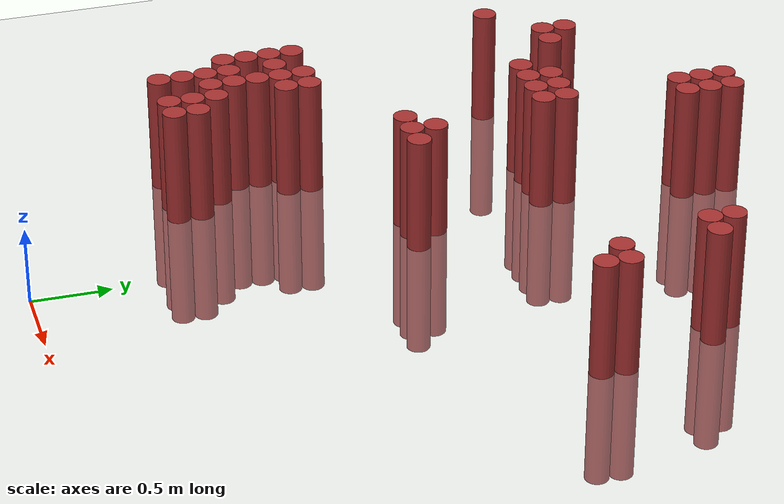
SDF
<sdf version="1.6">
 <world name="default">
  <model name="ground_plane">
   <static>1</static>
   <link name="link">
    <collision name="collision">
     <geometry><plane><normal>0 0 1</normal><size>100 100</size></plane></geometry>
     <surface><friction><ode><mu>100</mu><mu2>50</mu2></ode></friction></surface>
    </collision>
    <visual name="visual">
     <cast_shadows>0</cast_shadows>
     <geometry><plane><normal>0 0 1</normal><size>100 100</size></plane></geometry>
     <material>
      <script><uri>file://media/materials/scripts/gazebo.material</uri><name>Gazebo/Grey</name></script>
     </material>
    </visual>
   </link>
  </model>
  <model name="unit_cylinder_161">
   <static>1</static>
   <pose>-1.475000 3.325000 0.000000 0.000000 0.000000 0.000000</pose>
   <link name="link">
    <inertial>
     <mass>1</mass>
     <inertia><ixx>0.145833</ixx><ixy>0</ixy><ixz>0</ixz><iyy>0.145833</iyy><iyz>0</iyz><izz>0.125</izz></inertia>
    </inertial>
    <collision name="collision">
     <geometry><cylinder><radius>0.075000</radius><length>1.5</length></cylinder></geometry>
    </collision>
    <visual name="visual">
     <geometry><cylinder><radius>0.075000</radius><length>1.5</length></cylinder></geometry>
     <material>
      <ambient>0.648000 0.192000 0.192000 1</ambient>
      <diffuse>0.648000 0.192000 0.192000 1</diffuse>
     </material>
     <material>
      <script><name>Gazebo/Grey</name><uri>file://media/materials/scripts/gazebo.material</uri></script>
     </material>
    </visual>
   </link>
  </model>
  <model name="unit_cylinder_165">
   <static>1</static>
   <pose>-1.325000 1.525000 0.000000 0.000000 0.000000 0.000000</pose>
   <link name="link">
    <inertial>
     <mass>1</mass>
     <inertia><ixx>0.145833</ixx><ixy>0</ixy><ixz>0</ixz><iyy>0.145833</iyy><iyz>0</iyz><izz>0.125</izz></inertia>
    </inertial>
    <collision name="collision">
     <geometry><cylinder><radius>0.075000</radius><length>1.5</length></cylinder></geometry>
    </collision>
    <visual name="visual">
     <geometry><cylinder><radius>0.075000</radius><length>1.5</length></cylinder></geometry>
     <material>
      <ambient>0.648000 0.192000 0.192000 1</ambient>
      <diffuse>0.648000 0.192000 0.192000 1</diffuse>
     </material>
     <material>
      <script><name>Gazebo/Grey</name><uri>file://media/materials/scripts/gazebo.material</uri></script>
     </material>
    </visual>
   </link>
  </model>
  <model name="unit_cylinder_166">
   <static>1</static>
   <pose>-1.325000 1.675000 0.000000 0.000000 0.000000 0.000000</pose>
   <link name="link">
    <inertial>
     <mass>1</mass>
     <inertia><ixx>0.145833</ixx><ixy>0</ixy><ixz>0</ixz><iyy>0.145833</iyy><iyz>0</iyz><izz>0.125</izz></inertia>
    </inertial>
    <collision name="collision">
     <geometry><cylinder><radius>0.075000</radius><length>1.5</length></cylinder></geometry>
    </collision>
    <visual name="visual">
     <geometry><cylinder><radius>0.075000</radius><length>1.5</length></cylinder></geometry>
     <material>
      <ambient>0.648000 0.192000 0.192000 1</ambient>
      <diffuse>0.648000 0.192000 0.192000 1</diffuse>
     </material>
     <material>
      <script><name>Gazebo/Grey</name><uri>file://media/materials/scripts/gazebo.material</uri></script>
     </material>
    </visual>
   </link>
  </model>
  <model name="unit_cylinder_167">
   <static>1</static>
   <pose>-1.325000 1.825000 0.000000 0.000000 0.000000 0.000000</pose>
   <link name="link">
    <inertial>
     <mass>1</mass>
     <inertia><ixx>0.145833</ixx><ixy>0</ixy><ixz>0</ixz><iyy>0.145833</iyy><iyz>0</iyz><izz>0.125</izz></inertia>
    </inertial>
    <collision name="collision">
     <geometry><cylinder><radius>0.075000</radius><length>1.5</length></cylinder></geometry>
    </collision>
    <visual name="visual">
     <geometry><cylinder><radius>0.075000</radius><length>1.5</length></cylinder></geometry>
     <material>
      <ambient>0.648000 0.192000 0.192000 1</ambient>
      <diffuse>0.648000 0.192000 0.192000 1</diffuse>
     </material>
     <material>
      <script><name>Gazebo/Grey</name><uri>file://media/materials/scripts/gazebo.material</uri></script>
     </material>
    </visual>
   </link>
  </model>
  <model name="unit_cylinder_168">
   <static>1</static>
   <pose>-1.325000 1.975000 0.000000 0.000000 0.000000 0.000000</pose>
   <link name="link">
    <inertial>
     <mass>1</mass>
     <inertia><ixx>0.145833</ixx><ixy>0</ixy><ixz>0</ixz><iyy>0.145833</iyy><iyz>0</iyz><izz>0.125</izz></inertia>
    </inertial>
    <collision name="collision">
     <geometry><cylinder><radius>0.075000</radius><length>1.5</length></cylinder></geometry>
    </collision>
    <visual name="visual">
     <geometry><cylinder><radius>0.075000</radius><length>1.5</length></cylinder></geometry>
     <material>
      <ambient>0.648000 0.192000 0.192000 1</ambient>
      <diffuse>0.648000 0.192000 0.192000 1</diffuse>
     </material>
     <material>
      <script><name>Gazebo/Grey</name><uri>file://media/materials/scripts/gazebo.material</uri></script>
     </material>
    </visual>
   </link>
  </model>
  <model name="unit_cylinder_171">
   <static>1</static>
   <pose>-1.175000 1.075000 0.000000 0.000000 0.000000 0.000000</pose>
   <link name="link">
    <inertial>
     <mass>1</mass>
     <inertia><ixx>0.145833</ixx><ixy>0</ixy><ixz>0</ixz><iyy>0.145833</iyy><iyz>0</iyz><izz>0.125</izz></inertia>
    </inertial>
    <collision name="collision">
     <geometry><cylinder><radius>0.075000</radius><length>1.5</length></cylinder></geometry>
    </collision>
    <visual name="visual">
     <geometry><cylinder><radius>0.075000</radius><length>1.5</length></cylinder></geometry>
     <material>
      <ambient>0.648000 0.192000 0.192000 1</ambient>
      <diffuse>0.648000 0.192000 0.192000 1</diffuse>
     </material>
     <material>
      <script><name>Gazebo/Grey</name><uri>file://media/materials/scripts/gazebo.material</uri></script>
     </material>
    </visual>
   </link>
  </model>
  <model name="unit_cylinder_172">
   <static>1</static>
   <pose>-1.175000 1.225000 0.000000 0.000000 0.000000 0.000000</pose>
   <link name="link">
    <inertial>
     <mass>1</mass>
     <inertia><ixx>0.145833</ixx><ixy>0</ixy><ixz>0</ixz><iyy>0.145833</iyy><iyz>0</iyz><izz>0.125</izz></inertia>
    </inertial>
    <collision name="collision">
     <geometry><cylinder><radius>0.075000</radius><length>1.5</length></cylinder></geometry>
    </collision>
    <visual name="visual">
     <geometry><cylinder><radius>0.075000</radius><length>1.5</length></cylinder></geometry>
     <material>
      <ambient>0.648000 0.192000 0.192000 1</ambient>
      <diffuse>0.648000 0.192000 0.192000 1</diffuse>
     </material>
     <material>
      <script><name>Gazebo/Grey</name><uri>file://media/materials/scripts/gazebo.material</uri></script>
     </material>
    </visual>
   </link>
  </model>
  <model name="unit_cylinder_173">
   <static>1</static>
   <pose>-1.175000 1.375000 0.000000 0.000000 0.000000 0.000000</pose>
   <link name="link">
    <inertial>
     <mass>1</mass>
     <inertia><ixx>0.145833</ixx><ixy>0</ixy><ixz>0</ixz><iyy>0.145833</iyy><iyz>0</iyz><izz>0.125</izz></inertia>
    </inertial>
    <collision name="collision">
     <geometry><cylinder><radius>0.075000</radius><length>1.5</length></cylinder></geometry>
    </collision>
    <visual name="visual">
     <geometry><cylinder><radius>0.075000</radius><length>1.5</length></cylinder></geometry>
     <material>
      <ambient>0.648000 0.192000 0.192000 1</ambient>
      <diffuse>0.648000 0.192000 0.192000 1</diffuse>
     </material>
     <material>
      <script><name>Gazebo/Grey</name><uri>file://media/materials/scripts/gazebo.material</uri></script>
     </material>
    </visual>
   </link>
  </model>
  <model name="unit_cylinder_174">
   <static>1</static>
   <pose>-1.175000 1.525000 0.000000 0.000000 0.000000 0.000000</pose>
   <link name="link">
    <inertial>
     <mass>1</mass>
     <inertia><ixx>0.145833</ixx><ixy>0</ixy><ixz>0</ixz><iyy>0.145833</iyy><iyz>0</iyz><izz>0.125</izz></inertia>
    </inertial>
    <collision name="collision">
     <geometry><cylinder><radius>0.075000</radius><length>1.5</length></cylinder></geometry>
    </collision>
    <visual name="visual">
     <geometry><cylinder><radius>0.075000</radius><length>1.5</length></cylinder></geometry>
     <material>
      <ambient>0.648000 0.192000 0.192000 1</ambient>
      <diffuse>0.648000 0.192000 0.192000 1</diffuse>
     </material>
     <material>
      <script><name>Gazebo/Grey</name><uri>file://media/materials/scripts/gazebo.material</uri></script>
     </material>
    </visual>
   </link>
  </model>
  <model name="unit_cylinder_175">
   <static>1</static>
   <pose>-1.175000 1.825000 0.000000 0.000000 0.000000 0.000000</pose>
   <link name="link">
    <inertial>
     <mass>1</mass>
     <inertia><ixx>0.145833</ixx><ixy>0</ixy><ixz>0</ixz><iyy>0.145833</iyy><iyz>0</iyz><izz>0.125</izz></inertia>
    </inertial>
    <collision name="collision">
     <geometry><cylinder><radius>0.075000</radius><length>1.5</length></cylinder></geometry>
    </collision>
    <visual name="visual">
     <geometry><cylinder><radius>0.075000</radius><length>1.5</length></cylinder></geometry>
     <material>
      <ambient>0.648000 0.192000 0.192000 1</ambient>
      <diffuse>0.648000 0.192000 0.192000 1</diffuse>
     </material>
     <material>
      <script><name>Gazebo/Grey</name><uri>file://media/materials/scripts/gazebo.material</uri></script>
     </material>
    </visual>
   </link>
  </model>
  <model name="unit_cylinder_176">
   <static>1</static>
   <pose>-1.175000 3.625000 0.000000 0.000000 0.000000 0.000000</pose>
   <link name="link">
    <inertial>
     <mass>1</mass>
     <inertia><ixx>0.145833</ixx><ixy>0</ixy><ixz>0</ixz><iyy>0.145833</iyy><iyz>0</iyz><izz>0.125</izz></inertia>
    </inertial>
    <collision name="collision">
     <geometry><cylinder><radius>0.075000</radius><length>1.5</length></cylinder></geometry>
    </collision>
    <visual name="visual">
     <geometry><cylinder><radius>0.075000</radius><length>1.5</length></cylinder></geometry>
     <material>
      <ambient>0.648000 0.192000 0.192000 1</ambient>
      <diffuse>0.648000 0.192000 0.192000 1</diffuse>
     </material>
     <material>
      <script><name>Gazebo/Grey</name><uri>file://media/materials/scripts/gazebo.material</uri></script>
     </material>
    </visual>
   </link>
  </model>
  <model name="unit_cylinder_177">
   <static>1</static>
   <pose>-1.175000 3.775000 0.000000 0.000000 0.000000 0.000000</pose>
   <link name="link">
    <inertial>
     <mass>1</mass>
     <inertia><ixx>0.145833</ixx><ixy>0</ixy><ixz>0</ixz><iyy>0.145833</iyy><iyz>0</iyz><izz>0.125</izz></inertia>
    </inertial>
    <collision name="collision">
     <geometry><cylinder><radius>0.075000</radius><length>1.5</length></cylinder></geometry>
    </collision>
    <visual name="visual">
     <geometry><cylinder><radius>0.075000</radius><length>1.5</length></cylinder></geometry>
     <material>
      <ambient>0.648000 0.192000 0.192000 1</ambient>
      <diffuse>0.648000 0.192000 0.192000 1</diffuse>
     </material>
     <material>
      <script><name>Gazebo/Grey</name><uri>file://media/materials/scripts/gazebo.material</uri></script>
     </material>
    </visual>
   </link>
  </model>
  <model name="unit_cylinder_179">
   <static>1</static>
   <pose>-1.025000 1.375000 0.000000 0.000000 0.000000 0.000000</pose>
   <link name="link">
    <inertial>
     <mass>1</mass>
     <inertia><ixx>0.145833</ixx><ixy>0</ixy><ixz>0</ixz><iyy>0.145833</iyy><iyz>0</iyz><izz>0.125</izz></inertia>
    </inertial>
    <collision name="collision">
     <geometry><cylinder><radius>0.075000</radius><length>1.5</length></cylinder></geometry>
    </collision>
    <visual name="visual">
     <geometry><cylinder><radius>0.075000</radius><length>1.5</length></cylinder></geometry>
     <material>
      <ambient>0.648000 0.192000 0.192000 1</ambient>
      <diffuse>0.648000 0.192000 0.192000 1</diffuse>
     </material>
     <material>
      <script><name>Gazebo/Grey</name><uri>file://media/materials/scripts/gazebo.material</uri></script>
     </material>
    </visual>
   </link>
  </model>
  <model name="unit_cylinder_180">
   <static>1</static>
   <pose>-1.025000 1.525000 0.000000 0.000000 0.000000 0.000000</pose>
   <link name="link">
    <inertial>
     <mass>1</mass>
     <inertia><ixx>0.145833</ixx><ixy>0</ixy><ixz>0</ixz><iyy>0.145833</iyy><iyz>0</iyz><izz>0.125</izz></inertia>
    </inertial>
    <collision name="collision">
     <geometry><cylinder><radius>0.075000</radius><length>1.5</length></cylinder></geometry>
    </collision>
    <visual name="visual">
     <geometry><cylinder><radius>0.075000</radius><length>1.5</length></cylinder></geometry>
     <material>
      <ambient>0.648000 0.192000 0.192000 1</ambient>
      <diffuse>0.648000 0.192000 0.192000 1</diffuse>
     </material>
     <material>
      <script><name>Gazebo/Grey</name><uri>file://media/materials/scripts/gazebo.material</uri></script>
     </material>
    </visual>
   </link>
  </model>
  <model name="unit_cylinder_181">
   <static>1</static>
   <pose>-1.025000 1.675000 0.000000 0.000000 0.000000 0.000000</pose>
   <link name="link">
    <inertial>
     <mass>1</mass>
     <inertia><ixx>0.145833</ixx><ixy>0</ixy><ixz>0</ixz><iyy>0.145833</iyy><iyz>0</iyz><izz>0.125</izz></inertia>
    </inertial>
    <collision name="collision">
     <geometry><cylinder><radius>0.075000</radius><length>1.5</length></cylinder></geometry>
    </collision>
    <visual name="visual">
     <geometry><cylinder><radius>0.075000</radius><length>1.5</length></cylinder></geometry>
     <material>
      <ambient>0.648000 0.192000 0.192000 1</ambient>
      <diffuse>0.648000 0.192000 0.192000 1</diffuse>
     </material>
     <material>
      <script><name>Gazebo/Grey</name><uri>file://media/materials/scripts/gazebo.material</uri></script>
     </material>
    </visual>
   </link>
  </model>
  <model name="unit_cylinder_182">
   <static>1</static>
   <pose>-1.025000 1.825000 0.000000 0.000000 0.000000 0.000000</pose>
   <link name="link">
    <inertial>
     <mass>1</mass>
     <inertia><ixx>0.145833</ixx><ixy>0</ixy><ixz>0</ixz><iyy>0.145833</iyy><iyz>0</iyz><izz>0.125</izz></inertia>
    </inertial>
    <collision name="collision">
     <geometry><cylinder><radius>0.075000</radius><length>1.5</length></cylinder></geometry>
    </collision>
    <visual name="visual">
     <geometry><cylinder><radius>0.075000</radius><length>1.5</length></cylinder></geometry>
     <material>
      <ambient>0.648000 0.192000 0.192000 1</ambient>
      <diffuse>0.648000 0.192000 0.192000 1</diffuse>
     </material>
     <material>
      <script><name>Gazebo/Grey</name><uri>file://media/materials/scripts/gazebo.material</uri></script>
     </material>
    </visual>
   </link>
  </model>
  <model name="unit_cylinder_183">
   <static>1</static>
   <pose>-1.025000 1.975000 0.000000 0.000000 0.000000 0.000000</pose>
   <link name="link">
    <inertial>
     <mass>1</mass>
     <inertia><ixx>0.145833</ixx><ixy>0</ixy><ixz>0</ixz><iyy>0.145833</iyy><iyz>0</iyz><izz>0.125</izz></inertia>
    </inertial>
    <collision name="collision">
     <geometry><cylinder><radius>0.075000</radius><length>1.5</length></cylinder></geometry>
    </collision>
    <visual name="visual">
     <geometry><cylinder><radius>0.075000</radius><length>1.5</length></cylinder></geometry>
     <material>
      <ambient>0.648000 0.192000 0.192000 1</ambient>
      <diffuse>0.648000 0.192000 0.192000 1</diffuse>
     </material>
     <material>
      <script><name>Gazebo/Grey</name><uri>file://media/materials/scripts/gazebo.material</uri></script>
     </material>
    </visual>
   </link>
  </model>
  <model name="unit_cylinder_184">
   <static>1</static>
   <pose>-1.025000 3.625000 0.000000 0.000000 0.000000 0.000000</pose>
   <link name="link">
    <inertial>
     <mass>1</mass>
     <inertia><ixx>0.145833</ixx><ixy>0</ixy><ixz>0</ixz><iyy>0.145833</iyy><iyz>0</iyz><izz>0.125</izz></inertia>
    </inertial>
    <collision name="collision">
     <geometry><cylinder><radius>0.075000</radius><length>1.5</length></cylinder></geometry>
    </collision>
    <visual name="visual">
     <geometry><cylinder><radius>0.075000</radius><length>1.5</length></cylinder></geometry>
     <material>
      <ambient>0.648000 0.192000 0.192000 1</ambient>
      <diffuse>0.648000 0.192000 0.192000 1</diffuse>
     </material>
     <material>
      <script><name>Gazebo/Grey</name><uri>file://media/materials/scripts/gazebo.material</uri></script>
     </material>
    </visual>
   </link>
  </model>
  <model name="unit_cylinder_186">
   <static>1</static>
   <pose>-0.875000 1.075000 0.000000 0.000000 0.000000 0.000000</pose>
   <link name="link">
    <inertial>
     <mass>1</mass>
     <inertia><ixx>0.145833</ixx><ixy>0</ixy><ixz>0</ixz><iyy>0.145833</iyy><iyz>0</iyz><izz>0.125</izz></inertia>
    </inertial>
    <collision name="collision">
     <geometry><cylinder><radius>0.075000</radius><length>1.5</length></cylinder></geometry>
    </collision>
    <visual name="visual">
     <geometry><cylinder><radius>0.075000</radius><length>1.5</length></cylinder></geometry>
     <material>
      <ambient>0.648000 0.192000 0.192000 1</ambient>
      <diffuse>0.648000 0.192000 0.192000 1</diffuse>
     </material>
     <material>
      <script><name>Gazebo/Grey</name><uri>file://media/materials/scripts/gazebo.material</uri></script>
     </material>
    </visual>
   </link>
  </model>
  <model name="unit_cylinder_187">
   <static>1</static>
   <pose>-0.875000 1.225000 0.000000 0.000000 0.000000 0.000000</pose>
   <link name="link">
    <inertial>
     <mass>1</mass>
     <inertia><ixx>0.145833</ixx><ixy>0</ixy><ixz>0</ixz><iyy>0.145833</iyy><iyz>0</iyz><izz>0.125</izz></inertia>
    </inertial>
    <collision name="collision">
     <geometry><cylinder><radius>0.075000</radius><length>1.5</length></cylinder></geometry>
    </collision>
    <visual name="visual">
     <geometry><cylinder><radius>0.075000</radius><length>1.5</length></cylinder></geometry>
     <material>
      <ambient>0.648000 0.192000 0.192000 1</ambient>
      <diffuse>0.648000 0.192000 0.192000 1</diffuse>
     </material>
     <material>
      <script><name>Gazebo/Grey</name><uri>file://media/materials/scripts/gazebo.material</uri></script>
     </material>
    </visual>
   </link>
  </model>
  <model name="unit_cylinder_188">
   <static>1</static>
   <pose>-0.875000 1.375000 0.000000 0.000000 0.000000 0.000000</pose>
   <link name="link">
    <inertial>
     <mass>1</mass>
     <inertia><ixx>0.145833</ixx><ixy>0</ixy><ixz>0</ixz><iyy>0.145833</iyy><iyz>0</iyz><izz>0.125</izz></inertia>
    </inertial>
    <collision name="collision">
     <geometry><cylinder><radius>0.075000</radius><length>1.5</length></cylinder></geometry>
    </collision>
    <visual name="visual">
     <geometry><cylinder><radius>0.075000</radius><length>1.5</length></cylinder></geometry>
     <material>
      <ambient>0.648000 0.192000 0.192000 1</ambient>
      <diffuse>0.648000 0.192000 0.192000 1</diffuse>
     </material>
     <material>
      <script><name>Gazebo/Grey</name><uri>file://media/materials/scripts/gazebo.material</uri></script>
     </material>
    </visual>
   </link>
  </model>
  <model name="unit_cylinder_189">
   <static>1</static>
   <pose>-0.875000 1.825000 0.000000 0.000000 0.000000 0.000000</pose>
   <link name="link">
    <inertial>
     <mass>1</mass>
     <inertia><ixx>0.145833</ixx><ixy>0</ixy><ixz>0</ixz><iyy>0.145833</iyy><iyz>0</iyz><izz>0.125</izz></inertia>
    </inertial>
    <collision name="collision">
     <geometry><cylinder><radius>0.075000</radius><length>1.5</length></cylinder></geometry>
    </collision>
    <visual name="visual">
     <geometry><cylinder><radius>0.075000</radius><length>1.5</length></cylinder></geometry>
     <material>
      <ambient>0.648000 0.192000 0.192000 1</ambient>
      <diffuse>0.648000 0.192000 0.192000 1</diffuse>
     </material>
     <material>
      <script><name>Gazebo/Grey</name><uri>file://media/materials/scripts/gazebo.material</uri></script>
     </material>
    </visual>
   </link>
  </model>
  <model name="unit_cylinder_190">
   <static>1</static>
   <pose>-0.875000 1.975000 0.000000 0.000000 0.000000 0.000000</pose>
   <link name="link">
    <inertial>
     <mass>1</mass>
     <inertia><ixx>0.145833</ixx><ixy>0</ixy><ixz>0</ixz><iyy>0.145833</iyy><iyz>0</iyz><izz>0.125</izz></inertia>
    </inertial>
    <collision name="collision">
     <geometry><cylinder><radius>0.075000</radius><length>1.5</length></cylinder></geometry>
    </collision>
    <visual name="visual">
     <geometry><cylinder><radius>0.075000</radius><length>1.5</length></cylinder></geometry>
     <material>
      <ambient>0.648000 0.192000 0.192000 1</ambient>
      <diffuse>0.648000 0.192000 0.192000 1</diffuse>
     </material>
     <material>
      <script><name>Gazebo/Grey</name><uri>file://media/materials/scripts/gazebo.material</uri></script>
     </material>
    </visual>
   </link>
  </model>
  <model name="unit_cylinder_191">
   <static>1</static>
   <pose>-0.725000 1.075000 0.000000 0.000000 0.000000 0.000000</pose>
   <link name="link">
    <inertial>
     <mass>1</mass>
     <inertia><ixx>0.145833</ixx><ixy>0</ixy><ixz>0</ixz><iyy>0.145833</iyy><iyz>0</iyz><izz>0.125</izz></inertia>
    </inertial>
    <collision name="collision">
     <geometry><cylinder><radius>0.075000</radius><length>1.5</length></cylinder></geometry>
    </collision>
    <visual name="visual">
     <geometry><cylinder><radius>0.075000</radius><length>1.5</length></cylinder></geometry>
     <material>
      <ambient>0.648000 0.192000 0.192000 1</ambient>
      <diffuse>0.648000 0.192000 0.192000 1</diffuse>
     </material>
     <material>
      <script><name>Gazebo/Grey</name><uri>file://media/materials/scripts/gazebo.material</uri></script>
     </material>
    </visual>
   </link>
  </model>
  <model name="unit_cylinder_192">
   <static>1</static>
   <pose>-0.725000 1.225000 0.000000 0.000000 0.000000 0.000000</pose>
   <link name="link">
    <inertial>
     <mass>1</mass>
     <inertia><ixx>0.145833</ixx><ixy>0</ixy><ixz>0</ixz><iyy>0.145833</iyy><iyz>0</iyz><izz>0.125</izz></inertia>
    </inertial>
    <collision name="collision">
     <geometry><cylinder><radius>0.075000</radius><length>1.5</length></cylinder></geometry>
    </collision>
    <visual name="visual">
     <geometry><cylinder><radius>0.075000</radius><length>1.5</length></cylinder></geometry>
     <material>
      <ambient>0.648000 0.192000 0.192000 1</ambient>
      <diffuse>0.648000 0.192000 0.192000 1</diffuse>
     </material>
     <material>
      <script><name>Gazebo/Grey</name><uri>file://media/materials/scripts/gazebo.material</uri></script>
     </material>
    </visual>
   </link>
  </model>
  <model name="unit_cylinder_193">
   <static>1</static>
   <pose>-0.725000 3.325000 0.000000 0.000000 0.000000 0.000000</pose>
   <link name="link">
    <inertial>
     <mass>1</mass>
     <inertia><ixx>0.145833</ixx><ixy>0</ixy><ixz>0</ixz><iyy>0.145833</iyy><iyz>0</iyz><izz>0.125</izz></inertia>
    </inertial>
    <collision name="collision">
     <geometry><cylinder><radius>0.075000</radius><length>1.5</length></cylinder></geometry>
    </collision>
    <visual name="visual">
     <geometry><cylinder><radius>0.075000</radius><length>1.5</length></cylinder></geometry>
     <material>
      <ambient>0.648000 0.192000 0.192000 1</ambient>
      <diffuse>0.648000 0.192000 0.192000 1</diffuse>
     </material>
     <material>
      <script><name>Gazebo/Grey</name><uri>file://media/materials/scripts/gazebo.material</uri></script>
     </material>
    </visual>
   </link>
  </model>
  <model name="unit_cylinder_194">
   <static>1</static>
   <pose>-0.575000 3.325000 0.000000 0.000000 0.000000 0.000000</pose>
   <link name="link">
    <inertial>
     <mass>1</mass>
     <inertia><ixx>0.145833</ixx><ixy>0</ixy><ixz>0</ixz><iyy>0.145833</iyy><iyz>0</iyz><izz>0.125</izz></inertia>
    </inertial>
    <collision name="collision">
     <geometry><cylinder><radius>0.075000</radius><length>1.5</length></cylinder></geometry>
    </collision>
    <visual name="visual">
     <geometry><cylinder><radius>0.075000</radius><length>1.5</length></cylinder></geometry>
     <material>
      <ambient>0.648000 0.192000 0.192000 1</ambient>
      <diffuse>0.648000 0.192000 0.192000 1</diffuse>
     </material>
     <material>
      <script><name>Gazebo/Grey</name><uri>file://media/materials/scripts/gazebo.material</uri></script>
     </material>
    </visual>
   </link>
  </model>
  <model name="unit_cylinder_195">
   <static>1</static>
   <pose>-0.575000 3.475000 0.000000 0.000000 0.000000 0.000000</pose>
   <link name="link">
    <inertial>
     <mass>1</mass>
     <inertia><ixx>0.145833</ixx><ixy>0</ixy><ixz>0</ixz><iyy>0.145833</iyy><iyz>0</iyz><izz>0.125</izz></inertia>
    </inertial>
    <collision name="collision">
     <geometry><cylinder><radius>0.075000</radius><length>1.5</length></cylinder></geometry>
    </collision>
    <visual name="visual">
     <geometry><cylinder><radius>0.075000</radius><length>1.5</length></cylinder></geometry>
     <material>
      <ambient>0.648000 0.192000 0.192000 1</ambient>
      <diffuse>0.648000 0.192000 0.192000 1</diffuse>
     </material>
     <material>
      <script><name>Gazebo/Grey</name><uri>file://media/materials/scripts/gazebo.material</uri></script>
     </material>
    </visual>
   </link>
  </model>
  <model name="unit_cylinder_196">
   <static>1</static>
   <pose>-0.425000 3.325000 0.000000 0.000000 0.000000 0.000000</pose>
   <link name="link">
    <inertial>
     <mass>1</mass>
     <inertia><ixx>0.145833</ixx><ixy>0</ixy><ixz>0</ixz><iyy>0.145833</iyy><iyz>0</iyz><izz>0.125</izz></inertia>
    </inertial>
    <collision name="collision">
     <geometry><cylinder><radius>0.075000</radius><length>1.5</length></cylinder></geometry>
    </collision>
    <visual name="visual">
     <geometry><cylinder><radius>0.075000</radius><length>1.5</length></cylinder></geometry>
     <material>
      <ambient>0.648000 0.192000 0.192000 1</ambient>
      <diffuse>0.648000 0.192000 0.192000 1</diffuse>
     </material>
     <material>
      <script><name>Gazebo/Grey</name><uri>file://media/materials/scripts/gazebo.material</uri></script>
     </material>
    </visual>
   </link>
  </model>
  <model name="unit_cylinder_197">
   <static>1</static>
   <pose>-0.425000 3.475000 0.000000 0.000000 0.000000 0.000000</pose>
   <link name="link">
    <inertial>
     <mass>1</mass>
     <inertia><ixx>0.145833</ixx><ixy>0</ixy><ixz>0</ixz><iyy>0.145833</iyy><iyz>0</iyz><izz>0.125</izz></inertia>
    </inertial>
    <collision name="collision">
     <geometry><cylinder><radius>0.075000</radius><length>1.5</length></cylinder></geometry>
    </collision>
    <visual name="visual">
     <geometry><cylinder><radius>0.075000</radius><length>1.5</length></cylinder></geometry>
     <material>
      <ambient>0.648000 0.192000 0.192000 1</ambient>
      <diffuse>0.648000 0.192000 0.192000 1</diffuse>
     </material>
     <material>
      <script><name>Gazebo/Grey</name><uri>file://media/materials/scripts/gazebo.material</uri></script>
     </material>
    </visual>
   </link>
  </model>
  <model name="unit_cylinder_200">
   <static>1</static>
   <pose>-0.275000 2.425000 0.000000 0.000000 0.000000 0.000000</pose>
   <link name="link">
    <inertial>
     <mass>1</mass>
     <inertia><ixx>0.145833</ixx><ixy>0</ixy><ixz>0</ixz><iyy>0.145833</iyy><iyz>0</iyz><izz>0.125</izz></inertia>
    </inertial>
    <collision name="collision">
     <geometry><cylinder><radius>0.075000</radius><length>1.5</length></cylinder></geometry>
    </collision>
    <visual name="visual">
     <geometry><cylinder><radius>0.075000</radius><length>1.5</length></cylinder></geometry>
     <material>
      <ambient>0.648000 0.192000 0.192000 1</ambient>
      <diffuse>0.648000 0.192000 0.192000 1</diffuse>
     </material>
     <material>
      <script><name>Gazebo/Grey</name><uri>file://media/materials/scripts/gazebo.material</uri></script>
     </material>
    </visual>
   </link>
  </model>
  <model name="unit_cylinder_201">
   <static>1</static>
   <pose>-0.275000 3.325000 0.000000 0.000000 0.000000 0.000000</pose>
   <link name="link">
    <inertial>
     <mass>1</mass>
     <inertia><ixx>0.145833</ixx><ixy>0</ixy><ixz>0</ixz><iyy>0.145833</iyy><iyz>0</iyz><izz>0.125</izz></inertia>
    </inertial>
    <collision name="collision">
     <geometry><cylinder><radius>0.075000</radius><length>1.5</length></cylinder></geometry>
    </collision>
    <visual name="visual">
     <geometry><cylinder><radius>0.075000</radius><length>1.5</length></cylinder></geometry>
     <material>
      <ambient>0.648000 0.192000 0.192000 1</ambient>
      <diffuse>0.648000 0.192000 0.192000 1</diffuse>
     </material>
     <material>
      <script><name>Gazebo/Grey</name><uri>file://media/materials/scripts/gazebo.material</uri></script>
     </material>
    </visual>
   </link>
  </model>
  <model name="unit_cylinder_202">
   <static>1</static>
   <pose>-0.275000 3.475000 0.000000 0.000000 0.000000 0.000000</pose>
   <link name="link">
    <inertial>
     <mass>1</mass>
     <inertia><ixx>0.145833</ixx><ixy>0</ixy><ixz>0</ixz><iyy>0.145833</iyy><iyz>0</iyz><izz>0.125</izz></inertia>
    </inertial>
    <collision name="collision">
     <geometry><cylinder><radius>0.075000</radius><length>1.5</length></cylinder></geometry>
    </collision>
    <visual name="visual">
     <geometry><cylinder><radius>0.075000</radius><length>1.5</length></cylinder></geometry>
     <material>
      <ambient>0.648000 0.192000 0.192000 1</ambient>
      <diffuse>0.648000 0.192000 0.192000 1</diffuse>
     </material>
     <material>
      <script><name>Gazebo/Grey</name><uri>file://media/materials/scripts/gazebo.material</uri></script>
     </material>
    </visual>
   </link>
  </model>
  <model name="unit_cylinder_203">
   <static>1</static>
   <pose>-0.275000 4.225000 0.000000 0.000000 0.000000 0.000000</pose>
   <link name="link">
    <inertial>
     <mass>1</mass>
     <inertia><ixx>0.145833</ixx><ixy>0</ixy><ixz>0</ixz><iyy>0.145833</iyy><iyz>0</iyz><izz>0.125</izz></inertia>
    </inertial>
    <collision name="collision">
     <geometry><cylinder><radius>0.075000</radius><length>1.5</length></cylinder></geometry>
    </collision>
    <visual name="visual">
     <geometry><cylinder><radius>0.075000</radius><length>1.5</length></cylinder></geometry>
     <material>
      <ambient>0.648000 0.192000 0.192000 1</ambient>
      <diffuse>0.648000 0.192000 0.192000 1</diffuse>
     </material>
     <material>
      <script><name>Gazebo/Grey</name><uri>file://media/materials/scripts/gazebo.material</uri></script>
     </material>
    </visual>
   </link>
  </model>
  <model name="unit_cylinder_204">
   <static>1</static>
   <pose>-0.275000 4.375000 0.000000 0.000000 0.000000 0.000000</pose>
   <link name="link">
    <inertial>
     <mass>1</mass>
     <inertia><ixx>0.145833</ixx><ixy>0</ixy><ixz>0</ixz><iyy>0.145833</iyy><iyz>0</iyz><izz>0.125</izz></inertia>
    </inertial>
    <collision name="collision">
     <geometry><cylinder><radius>0.075000</radius><length>1.5</length></cylinder></geometry>
    </collision>
    <visual name="visual">
     <geometry><cylinder><radius>0.075000</radius><length>1.5</length></cylinder></geometry>
     <material>
      <ambient>0.648000 0.192000 0.192000 1</ambient>
      <diffuse>0.648000 0.192000 0.192000 1</diffuse>
     </material>
     <material>
      <script><name>Gazebo/Grey</name><uri>file://media/materials/scripts/gazebo.material</uri></script>
     </material>
    </visual>
   </link>
  </model>
  <model name="unit_cylinder_205">
   <static>1</static>
   <pose>-0.275000 4.525000 0.000000 0.000000 0.000000 0.000000</pose>
   <link name="link">
    <inertial>
     <mass>1</mass>
     <inertia><ixx>0.145833</ixx><ixy>0</ixy><ixz>0</ixz><iyy>0.145833</iyy><iyz>0</iyz><izz>0.125</izz></inertia>
    </inertial>
    <collision name="collision">
     <geometry><cylinder><radius>0.075000</radius><length>1.5</length></cylinder></geometry>
    </collision>
    <visual name="visual">
     <geometry><cylinder><radius>0.075000</radius><length>1.5</length></cylinder></geometry>
     <material>
      <ambient>0.648000 0.192000 0.192000 1</ambient>
      <diffuse>0.648000 0.192000 0.192000 1</diffuse>
     </material>
     <material>
      <script><name>Gazebo/Grey</name><uri>file://media/materials/scripts/gazebo.material</uri></script>
     </material>
    </visual>
   </link>
  </model>
  <model name="unit_cylinder_209">
   <static>1</static>
   <pose>-0.125000 2.425000 0.000000 0.000000 0.000000 0.000000</pose>
   <link name="link">
    <inertial>
     <mass>1</mass>
     <inertia><ixx>0.145833</ixx><ixy>0</ixy><ixz>0</ixz><iyy>0.145833</iyy><iyz>0</iyz><izz>0.125</izz></inertia>
    </inertial>
    <collision name="collision">
     <geometry><cylinder><radius>0.075000</radius><length>1.5</length></cylinder></geometry>
    </collision>
    <visual name="visual">
     <geometry><cylinder><radius>0.075000</radius><length>1.5</length></cylinder></geometry>
     <material>
      <ambient>0.648000 0.192000 0.192000 1</ambient>
      <diffuse>0.648000 0.192000 0.192000 1</diffuse>
     </material>
     <material>
      <script><name>Gazebo/Grey</name><uri>file://media/materials/scripts/gazebo.material</uri></script>
     </material>
    </visual>
   </link>
  </model>
  <model name="unit_cylinder_210">
   <static>1</static>
   <pose>-0.125000 2.575000 0.000000 0.000000 0.000000 0.000000</pose>
   <link name="link">
    <inertial>
     <mass>1</mass>
     <inertia><ixx>0.145833</ixx><ixy>0</ixy><ixz>0</ixz><iyy>0.145833</iyy><iyz>0</iyz><izz>0.125</izz></inertia>
    </inertial>
    <collision name="collision">
     <geometry><cylinder><radius>0.075000</radius><length>1.5</length></cylinder></geometry>
    </collision>
    <visual name="visual">
     <geometry><cylinder><radius>0.075000</radius><length>1.5</length></cylinder></geometry>
     <material>
      <ambient>0.648000 0.192000 0.192000 1</ambient>
      <diffuse>0.648000 0.192000 0.192000 1</diffuse>
     </material>
     <material>
      <script><name>Gazebo/Grey</name><uri>file://media/materials/scripts/gazebo.material</uri></script>
     </material>
    </visual>
   </link>
  </model>
  <model name="unit_cylinder_211">
   <static>1</static>
   <pose>-0.125000 4.225000 0.000000 0.000000 0.000000 0.000000</pose>
   <link name="link">
    <inertial>
     <mass>1</mass>
     <inertia><ixx>0.145833</ixx><ixy>0</ixy><ixz>0</ixz><iyy>0.145833</iyy><iyz>0</iyz><izz>0.125</izz></inertia>
    </inertial>
    <collision name="collision">
     <geometry><cylinder><radius>0.075000</radius><length>1.5</length></cylinder></geometry>
    </collision>
    <visual name="visual">
     <geometry><cylinder><radius>0.075000</radius><length>1.5</length></cylinder></geometry>
     <material>
      <ambient>0.648000 0.192000 0.192000 1</ambient>
      <diffuse>0.648000 0.192000 0.192000 1</diffuse>
     </material>
     <material>
      <script><name>Gazebo/Grey</name><uri>file://media/materials/scripts/gazebo.material</uri></script>
     </material>
    </visual>
   </link>
  </model>
  <model name="unit_cylinder_212">
   <static>1</static>
   <pose>-0.125000 4.375000 0.000000 0.000000 0.000000 0.000000</pose>
   <link name="link">
    <inertial>
     <mass>1</mass>
     <inertia><ixx>0.145833</ixx><ixy>0</ixy><ixz>0</ixz><iyy>0.145833</iyy><iyz>0</iyz><izz>0.125</izz></inertia>
    </inertial>
    <collision name="collision">
     <geometry><cylinder><radius>0.075000</radius><length>1.5</length></cylinder></geometry>
    </collision>
    <visual name="visual">
     <geometry><cylinder><radius>0.075000</radius><length>1.5</length></cylinder></geometry>
     <material>
      <ambient>0.648000 0.192000 0.192000 1</ambient>
      <diffuse>0.648000 0.192000 0.192000 1</diffuse>
     </material>
     <material>
      <script><name>Gazebo/Grey</name><uri>file://media/materials/scripts/gazebo.material</uri></script>
     </material>
    </visual>
   </link>
  </model>
  <model name="unit_cylinder_213">
   <static>1</static>
   <pose>-0.125000 4.525000 0.000000 0.000000 0.000000 0.000000</pose>
   <link name="link">
    <inertial>
     <mass>1</mass>
     <inertia><ixx>0.145833</ixx><ixy>0</ixy><ixz>0</ixz><iyy>0.145833</iyy><iyz>0</iyz><izz>0.125</izz></inertia>
    </inertial>
    <collision name="collision">
     <geometry><cylinder><radius>0.075000</radius><length>1.5</length></cylinder></geometry>
    </collision>
    <visual name="visual">
     <geometry><cylinder><radius>0.075000</radius><length>1.5</length></cylinder></geometry>
     <material>
      <ambient>0.648000 0.192000 0.192000 1</ambient>
      <diffuse>0.648000 0.192000 0.192000 1</diffuse>
     </material>
     <material>
      <script><name>Gazebo/Grey</name><uri>file://media/materials/scripts/gazebo.material</uri></script>
     </material>
    </visual>
   </link>
  </model>
  <model name="unit_cylinder_217">
   <static>1</static>
   <pose>0.025000 2.425000 0.000000 0.000000 0.000000 0.000000</pose>
   <link name="link">
    <inertial>
     <mass>1</mass>
     <inertia><ixx>0.145833</ixx><ixy>0</ixy><ixz>0</ixz><iyy>0.145833</iyy><iyz>0</iyz><izz>0.125</izz></inertia>
    </inertial>
    <collision name="collision">
     <geometry><cylinder><radius>0.075000</radius><length>1.5</length></cylinder></geometry>
    </collision>
    <visual name="visual">
     <geometry><cylinder><radius>0.075000</radius><length>1.5</length></cylinder></geometry>
     <material>
      <ambient>0.648000 0.192000 0.192000 1</ambient>
      <diffuse>0.648000 0.192000 0.192000 1</diffuse>
     </material>
     <material>
      <script><name>Gazebo/Grey</name><uri>file://media/materials/scripts/gazebo.material</uri></script>
     </material>
    </visual>
   </link>
  </model>
  <model name="unit_cylinder_223">
   <static>1</static>
   <pose>1.375000 3.775000 0.000000 0.000000 0.000000 0.000000</pose>
   <link name="link">
    <inertial>
     <mass>1</mass>
     <inertia><ixx>0.145833</ixx><ixy>0</ixy><ixz>0</ixz><iyy>0.145833</iyy><iyz>0</iyz><izz>0.125</izz></inertia>
    </inertial>
    <collision name="collision">
     <geometry><cylinder><radius>0.075000</radius><length>1.5</length></cylinder></geometry>
    </collision>
    <visual name="visual">
     <geometry><cylinder><radius>0.075000</radius><length>1.5</length></cylinder></geometry>
     <material>
      <ambient>0.648000 0.192000 0.192000 1</ambient>
      <diffuse>0.648000 0.192000 0.192000 1</diffuse>
     </material>
     <material>
      <script><name>Gazebo/Grey</name><uri>file://media/materials/scripts/gazebo.material</uri></script>
     </material>
    </visual>
   </link>
  </model>
  <model name="unit_cylinder_224">
   <static>1</static>
   <pose>1.375000 3.925000 0.000000 0.000000 0.000000 0.000000</pose>
   <link name="link">
    <inertial>
     <mass>1</mass>
     <inertia><ixx>0.145833</ixx><ixy>0</ixy><ixz>0</ixz><iyy>0.145833</iyy><iyz>0</iyz><izz>0.125</izz></inertia>
    </inertial>
    <collision name="collision">
     <geometry><cylinder><radius>0.075000</radius><length>1.5</length></cylinder></geometry>
    </collision>
    <visual name="visual">
     <geometry><cylinder><radius>0.075000</radius><length>1.5</length></cylinder></geometry>
     <material>
      <ambient>0.648000 0.192000 0.192000 1</ambient>
      <diffuse>0.648000 0.192000 0.192000 1</diffuse>
     </material>
     <material>
      <script><name>Gazebo/Grey</name><uri>file://media/materials/scripts/gazebo.material</uri></script>
     </material>
    </visual>
   </link>
  </model>
  <model name="unit_cylinder_225">
   <static>1</static>
   <pose>1.525000 3.175000 0.000000 0.000000 0.000000 0.000000</pose>
   <link name="link">
    <inertial>
     <mass>1</mass>
     <inertia><ixx>0.145833</ixx><ixy>0</ixy><ixz>0</ixz><iyy>0.145833</iyy><iyz>0</iyz><izz>0.125</izz></inertia>
    </inertial>
    <collision name="collision">
     <geometry><cylinder><radius>0.075000</radius><length>1.5</length></cylinder></geometry>
    </collision>
    <visual name="visual">
     <geometry><cylinder><radius>0.075000</radius><length>1.5</length></cylinder></geometry>
     <material>
      <ambient>0.648000 0.192000 0.192000 1</ambient>
      <diffuse>0.648000 0.192000 0.192000 1</diffuse>
     </material>
     <material>
      <script><name>Gazebo/Grey</name><uri>file://media/materials/scripts/gazebo.material</uri></script>
     </material>
    </visual>
   </link>
  </model>
  <model name="unit_cylinder_226">
   <static>1</static>
   <pose>1.525000 3.775000 0.000000 0.000000 0.000000 0.000000</pose>
   <link name="link">
    <inertial>
     <mass>1</mass>
     <inertia><ixx>0.145833</ixx><ixy>0</ixy><ixz>0</ixz><iyy>0.145833</iyy><iyz>0</iyz><izz>0.125</izz></inertia>
    </inertial>
    <collision name="collision">
     <geometry><cylinder><radius>0.075000</radius><length>1.5</length></cylinder></geometry>
    </collision>
    <visual name="visual">
     <geometry><cylinder><radius>0.075000</radius><length>1.5</length></cylinder></geometry>
     <material>
      <ambient>0.648000 0.192000 0.192000 1</ambient>
      <diffuse>0.648000 0.192000 0.192000 1</diffuse>
     </material>
     <material>
      <script><name>Gazebo/Grey</name><uri>file://media/materials/scripts/gazebo.material</uri></script>
     </material>
    </visual>
   </link>
  </model>
  <model name="unit_cylinder_227">
   <static>1</static>
   <pose>1.675000 3.025000 0.000000 0.000000 0.000000 0.000000</pose>
   <link name="link">
    <inertial>
     <mass>1</mass>
     <inertia><ixx>0.145833</ixx><ixy>0</ixy><ixz>0</ixz><iyy>0.145833</iyy><iyz>0</iyz><izz>0.125</izz></inertia>
    </inertial>
    <collision name="collision">
     <geometry><cylinder><radius>0.075000</radius><length>1.5</length></cylinder></geometry>
    </collision>
    <visual name="visual">
     <geometry><cylinder><radius>0.075000</radius><length>1.5</length></cylinder></geometry>
     <material>
      <ambient>0.648000 0.192000 0.192000 1</ambient>
      <diffuse>0.648000 0.192000 0.192000 1</diffuse>
     </material>
     <material>
      <script><name>Gazebo/Grey</name><uri>file://media/materials/scripts/gazebo.material</uri></script>
     </material>
    </visual>
   </link>
  </model>
  <model name="unit_cylinder_228">
   <static>1</static>
   <pose>1.675000 3.175000 0.000000 0.000000 0.000000 0.000000</pose>
   <link name="link">
    <inertial>
     <mass>1</mass>
     <inertia><ixx>0.145833</ixx><ixy>0</ixy><ixz>0</ixz><iyy>0.145833</iyy><iyz>0</iyz><izz>0.125</izz></inertia>
    </inertial>
    <collision name="collision">
     <geometry><cylinder><radius>0.075000</radius><length>1.5</length></cylinder></geometry>
    </collision>
    <visual name="visual">
     <geometry><cylinder><radius>0.075000</radius><length>1.5</length></cylinder></geometry>
     <material>
      <ambient>0.648000 0.192000 0.192000 1</ambient>
      <diffuse>0.648000 0.192000 0.192000 1</diffuse>
     </material>
     <material>
      <script><name>Gazebo/Grey</name><uri>file://media/materials/scripts/gazebo.material</uri></script>
     </material>
    </visual>
   </link>
  </model>
 </world>
</sdf>
